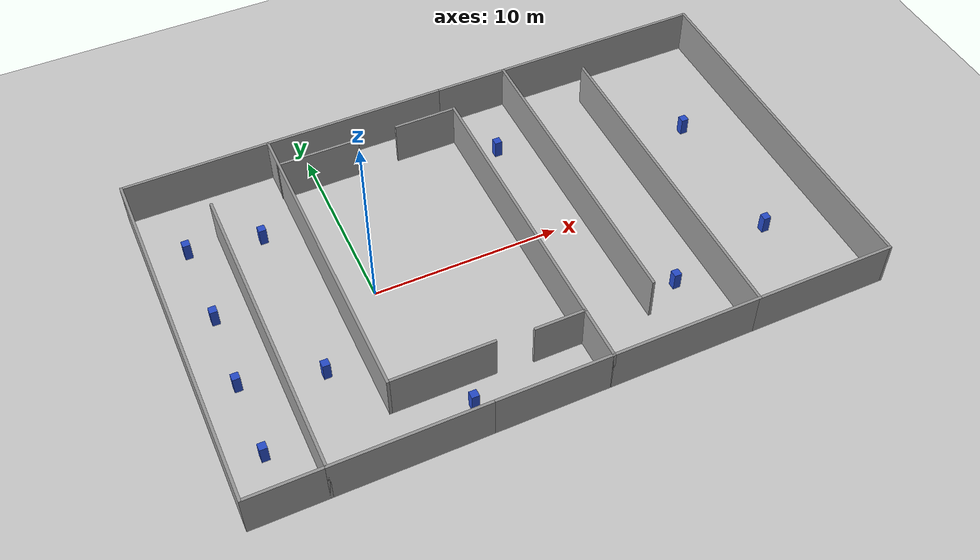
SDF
<?xml version="1.0" ?>
<sdf version="1.6">
  <world name="Local_0904_world">
    <!-- 태양광 조명 -->
    <include>
      <uri>model://sun</uri>
    </include>

    <!-- 바닥 (Ground Plane) -->
    <include>
      <uri>model://ground_plane</uri>
    </include>

    <!-- Local_0904 맵 모델 (벽체) -->
    <include>
      <uri>model://Local_0904</uri>
      <pose>0 0 0 0 0 0</pose>
    </include>

    <!-- [1] 정적 장애물 11개 (Static Obstacles - 월드 기본 포함)             -->
    <!-- static_obs_1 -->
    <include>
      <name>static_obs_1</name>
      <uri>model://static_box_obstacle</uri>
      <pose>-8.0 -6.75 0.01 0 0 0.0</pose>
    </include>
    <!-- static_obs_2 -->
    <include>
      <name>static_obs_2</name>
      <uri>model://static_box_obstacle</uri>
      <pose>-7.95 -2.6 0.01 0 0 0.0</pose>
    </include>
    <!-- static_obs_3 -->
    <include>
      <name>static_obs_3</name>
      <uri>model://static_box_obstacle</uri>
      <pose>-7.75 1.65 0.01 0 0 0.0</pose>
    </include>
    <!-- static_obs_4 -->
    <include>
      <name>static_obs_4</name>
      <uri>model://static_box_obstacle</uri>
      <pose>-7.75 6.35 0.01 0 0 0.0</pose>
    </include>
    <!-- static_obs_5 -->
    <include>
      <name>static_obs_5</name>
      <uri>model://static_box_obstacle</uri>
      <pose>-3.95 5.7 0.01 0 0 0.0</pose>
    </include>
    <!-- static_obs_6 -->
    <include>
      <name>static_obs_6</name>
      <uri>model://static_box_obstacle</uri>
      <pose>-3.9 -3.65 0.01 0 0 0.0</pose>
    </include>
    <!-- static_obs_7 -->
    <include>
      <name>static_obs_7</name>
      <uri>model://static_box_obstacle</uri>
      <pose>1.7 -8.2 0.01 0 0 0.0</pose>
    </include>
    <!-- static_obs_8 -->
    <include>
      <name>static_obs_8</name>
      <uri>model://static_box_obstacle</uri>
      <pose>9.7 6.4 0.01 0 0 0.0</pose>
    </include>
    <!-- static_obs_9 -->
    <include>
      <name>static_obs_9</name>
      <uri>model://static_box_obstacle</uri>
      <pose>13.8 -5.85 0.01 0 0 0.0</pose>
    </include>
    <!-- static_obs_10 -->
    <include>
      <name>static_obs_10</name>
      <uri>model://static_box_obstacle</uri>
      <pose>19.8 3.65 0.01 0 0 0.0</pose>
    </include>
    <!-- static_obs_11 -->
    <include>
      <name>static_obs_11</name>
      <uri>model://static_box_obstacle</uri>
      <pose>19.9 -4.5 0.01 0 0 0.0</pose>
    </include>

    <!-- 물리 엔진 설정 (ODE 최적화) -->
    <physics type="ode">
      <real_time_update_rate>1000.0</real_time_update_rate>
      <max_step_size>0.001</max_step_size>
      <real_time_factor>1.0</real_time_factor>
      <ode>
        <solver>
          <type>quick</type>
          <iters>150</iters>
          <precon_iters>0</precon_iters>
          <sor>1.4</sor>
          <use_dynamic_moi_rescaling>1</use_dynamic_moi_rescaling>
        </solver>
        <constraints>
          <cfm>0.00001</cfm>
          <erp>0.2</erp>
          <contact_max_correcting_vel>2000.0</contact_max_correcting_vel>
          <contact_surface_layer>0.01</contact_surface_layer>
        </constraints>
      </ode>
    </physics>

    <!-- GUI 초기 카메라 조감도 시점 (가로 34m x 세로 20m 전체 조감) -->
    <gui fullscreen="0">
      <camera name="overview_camera">
        <pose>6.5 -0.5 42.0 0.0 1.5707 1.5707</pose>
        <view_controller>orbit</view_controller>
      </camera>
    </gui>
  </world>
</sdf>

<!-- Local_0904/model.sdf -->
<sdf version="1.7">
  <model name="Local_0904">
    <pose>0 0 0 0 0 0</pose>
    <link name="Wall_10">
      <collision name="Wall_10_Collision">
        <geometry>
          <box>
            <size>4 0.15 2.5</size>
          </box>
        </geometry>
        <pose>0 0 1.25 0 -0 0</pose>
      </collision>
      <visual name="Wall_10_Visual">
        <pose>0 0 1.25 0 -0 0</pose>
        <geometry>
          <box>
            <size>4 0.15 2.5</size>
          </box>
        </geometry>
        <material>
          <script>
            <uri>file://media/materials/scripts/gazebo.material</uri>
            <name>Gazebo/Grey</name>
          </script>
          <ambient>1 1 1 1</ambient>
        </material>
        <meta>
          <layer>0</layer>
        </meta>
      </visual>
      <pose>-7.8885 -9.8834 0.0000 0.0000 -0.0000 0.0000</pose>
    </link>
    <link name="Wall_12">
      <collision name="Wall_12_Collision">
        <geometry>
          <box>
            <size>17 0.15 2.5</size>
          </box>
        </geometry>
        <pose>0 0 1.25 0 -0 0</pose>
      </collision>
      <visual name="Wall_12_Visual">
        <pose>0 0 1.25 0 -0 0</pose>
        <geometry>
          <box>
            <size>17 0.15 2.5</size>
          </box>
        </geometry>
        <material>
          <script>
            <uri>file://media/materials/scripts/gazebo.material</uri>
            <name>Gazebo/Grey</name>
          </script>
          <ambient>1 1 1 1</ambient>
        </material>
        <meta>
          <layer>0</layer>
        </meta>
      </visual>
      <pose>-5.9635 -1.4584 0.0000 0.0000 -0.0000 1.5708</pose>
    </link>
    <link name="Wall_14">
      <collision name="Wall_14_Collision">
        <geometry>
          <box>
            <size>8 0.15 2.5</size>
          </box>
        </geometry>
        <pose>0 0 1.25 0 -0 0</pose>
      </collision>
      <visual name="Wall_14_Visual">
        <pose>0 0 1.25 0 -0 0</pose>
        <geometry>
          <box>
            <size>8 0.15 2.5</size>
          </box>
        </geometry>
        <material>
          <script>
            <uri>file://media/materials/scripts/gazebo.material</uri>
            <name>Gazebo/Grey</name>
          </script>
          <ambient>1 1 1 1</ambient>
        </material>
        <meta>
          <layer>0</layer>
        </meta>
      </visual>
      <pose>-5.8885 9.9666 0.0000 0.0000 -0.0000 0.0000</pose>
    </link>
    <link name="Wall_16">
      <collision name="Wall_16_Collision">
        <geometry>
          <box>
            <size>17 0.15 2.5</size>
          </box>
        </geometry>
        <pose>0 0 1.25 0 -0 0</pose>
      </collision>
      <visual name="Wall_16_Visual">
        <pose>0 0 1.25 0 -0 0</pose>
        <geometry>
          <box>
            <size>17 0.15 2.5</size>
          </box>
        </geometry>
        <material>
          <script>
            <uri>file://media/materials/scripts/gazebo.material</uri>
            <name>Gazebo/Grey</name>
          </script>
          <ambient>1 1 1 1</ambient>
        </material>
        <meta>
          <layer>0</layer>
        </meta>
      </visual>
      <pose>-1.9635 1.5416 0.0000 0.0000 -0.0000 -1.5708</pose>
    </link>
    <link name="Wall_18">
      <collision name="Wall_18_Collision">
        <geometry>
          <box>
            <size>8 0.15 2.5</size>
          </box>
        </geometry>
        <pose>0 0 1.25 0 -0 0</pose>
      </collision>
      <visual name="Wall_18_Visual">
        <pose>0 0 1.25 0 -0 0</pose>
        <geometry>
          <box>
            <size>8 0.15 2.5</size>
          </box>
        </geometry>
        <material>
          <script>
            <uri>file://media/materials/scripts/gazebo.material</uri>
            <name>Gazebo/Grey</name>
          </script>
          <ambient>1 1 1 1</ambient>
        </material>
        <meta>
          <layer>0</layer>
        </meta>
      </visual>
      <pose>-2.0385 -9.8834 0.0000 0.0000 -0.0000 0.0000</pose>
    </link>
    <link name="Wall_20">
      <collision name="Wall_20_Collision">
        <geometry>
          <box>
            <size>10 0.15 2.5</size>
          </box>
        </geometry>
        <pose>0 0 1.25 0 -0 0</pose>
      </collision>
      <visual name="Wall_20_Visual">
        <pose>0 0 1.25 0 -0 0</pose>
        <geometry>
          <box>
            <size>10 0.15 2.5</size>
          </box>
        </geometry>
        <material>
          <script>
            <uri>file://media/materials/scripts/gazebo.material</uri>
            <name>Gazebo/Grey</name>
          </script>
          <ambient>1 1 1 1</ambient>
        </material>
        <meta>
          <layer>0</layer>
        </meta>
      </visual>
      <pose>2.9615 9.9666 0.0000 0.0000 -0.0000 0.0000</pose>
    </link>
    <link name="Wall_22">
      <collision name="Wall_22_Collision">
        <geometry>
          <box>
            <size>4.5 0.15 2.5</size>
          </box>
        </geometry>
        <pose>0 0 1.25 0 -0 0</pose>
      </collision>
      <visual name="Wall_22_Visual">
        <pose>0 0 1.25 0 -0 0</pose>
        <geometry>
          <box>
            <size>4.5 0.15 2.5</size>
          </box>
        </geometry>
        <material>
          <script>
            <uri>file://media/materials/scripts/gazebo.material</uri>
            <name>Gazebo/Grey</name>
          </script>
          <ambient>1 1 1 1</ambient>
        </material>
        <meta>
          <layer>0</layer>
        </meta>
      </visual>
      <pose>0.1788 8.2240 0.0000 0.0000 -0.0000 0.0000</pose>
    </link>
    <link name="Wall_25">
      <collision name="Wall_25_Collision">
        <geometry>
          <box>
            <size>6.25 0.15 2.5</size>
          </box>
        </geometry>
        <pose>0 0 1.25 0 -0 0</pose>
      </collision>
      <visual name="Wall_25_Visual">
        <pose>0 0 1.25 0 -0 0</pose>
        <geometry>
          <box>
            <size>6.25 0.15 2.5</size>
          </box>
        </geometry>
        <material>
          <script>
            <uri>file://media/materials/scripts/gazebo.material</uri>
            <name>Gazebo/Grey</name>
          </script>
          <ambient>1 1 1 1</ambient>
        </material>
        <meta>
          <layer>0</layer>
        </meta>
      </visual>
      <pose>4.9365 -9.8834 0.0000 0.0000 -0.0000 0.0000</pose>
    </link>
    <link name="Wall_26">
      <collision name="Wall_26_Collision">
        <geometry>
          <box>
            <size>3 0.15 2.5</size>
          </box>
        </geometry>
        <pose>0 0 1.25 0 -0 0</pose>
      </collision>
      <visual name="Wall_26_Visual">
        <pose>0 0 1.25 0 -0 0</pose>
        <geometry>
          <box>
            <size>3 0.15 2.5</size>
          </box>
        </geometry>
        <material>
          <script>
            <uri>file://media/materials/scripts/gazebo.material</uri>
            <name>Gazebo/Grey</name>
          </script>
          <ambient>1 1 1 1</ambient>
        </material>
        <meta>
          <layer>0</layer>
        </meta>
      </visual>
      <pose>7.9865 -8.4584 0.0000 0.0000 -0.0000 1.5708</pose>
    </link>
    <link name="Wall_27">
      <collision name="Wall_27_Collision">
        <geometry>
          <box>
            <size>2.75 0.15 2.5</size>
          </box>
        </geometry>
        <pose>0 0 1.25 0 -0 0</pose>
      </collision>
      <visual name="Wall_27_Visual">
        <pose>0 0 1.25 0 -0 0</pose>
        <geometry>
          <box>
            <size>2.75 0.15 2.5</size>
          </box>
        </geometry>
        <material>
          <script>
            <uri>file://media/materials/scripts/gazebo.material</uri>
            <name>Gazebo/Grey</name>
          </script>
          <ambient>1 1 1 1</ambient>
        </material>
        <meta>
          <layer>0</layer>
        </meta>
      </visual>
      <pose>6.6865 -7.0334 0.0000 0.0000 -0.0000 3.1416</pose>
    </link>
    <link name="Wall_29">
      <collision name="Wall_29_Collision">
        <geometry>
          <box>
            <size>5.5 0.15 2.5</size>
          </box>
        </geometry>
        <pose>0 0 1.25 0 -0 0</pose>
      </collision>
      <visual name="Wall_29_Visual">
        <pose>0 0 1.25 0 -0 0</pose>
        <geometry>
          <box>
            <size>5.5 0.15 2.5</size>
          </box>
        </geometry>
        <material>
          <script>
            <uri>file://media/materials/scripts/gazebo.material</uri>
            <name>Gazebo/Grey</name>
          </script>
          <ambient>1 1 1 1</ambient>
        </material>
        <meta>
          <layer>0</layer>
        </meta>
      </visual>
      <pose>0.7115 -6.8834 0.0000 0.0000 -0.0000 0.0000</pose>
    </link>
    <link name="Wall_32">
      <collision name="Wall_32_Collision">
        <geometry>
          <box>
            <size>3.5 0.15 2.5</size>
          </box>
        </geometry>
        <pose>0 0 1.25 0 -0 0</pose>
      </collision>
      <visual name="Wall_32_Visual">
        <pose>0 0 1.25 0 -0 0</pose>
        <geometry>
          <box>
            <size>3.5 0.15 2.5</size>
          </box>
        </geometry>
        <material>
          <script>
            <uri>file://media/materials/scripts/gazebo.material</uri>
            <name>Gazebo/Grey</name>
          </script>
          <ambient>1 1 1 1</ambient>
        </material>
        <meta>
          <layer>0</layer>
        </meta>
      </visual>
      <pose>6.3131 8.2775 0.0000 0.0000 -0.0000 0.0000</pose>
    </link>
    <link name="Wall_33">
      <collision name="Wall_33_Collision">
        <geometry>
          <box>
            <size>15.4609 0.15 2.5</size>
          </box>
        </geometry>
        <pose>0 0 1.25 0 -0 0</pose>
      </collision>
      <visual name="Wall_33_Visual">
        <pose>0 0 1.25 0 -0 0</pose>
        <geometry>
          <box>
            <size>15.4609 0.15 2.5</size>
          </box>
        </geometry>
        <material>
          <script>
            <uri>file://media/materials/scripts/gazebo.material</uri>
            <name>Gazebo/Grey</name>
          </script>
          <ambient>1 1 1 1</ambient>
        </material>
        <meta>
          <layer>0</layer>
        </meta>
      </visual>
      <pose>7.9873 0.6221 0.0000 0.0000 -0.0000 -1.5709</pose>
    </link>
    <link name="Wall_35">
      <collision name="Wall_35_Collision">
        <geometry>
          <box>
            <size>4 0.15 2.5</size>
          </box>
        </geometry>
        <pose>0 0 1.25 0 -0 0</pose>
      </collision>
      <visual name="Wall_35_Visual">
        <pose>0 0 1.25 0 -0 0</pose>
        <geometry>
          <box>
            <size>4 0.15 2.5</size>
          </box>
        </geometry>
        <material>
          <script>
            <uri>file://media/materials/scripts/gazebo.material</uri>
            <name>Gazebo/Grey</name>
          </script>
          <ambient>1 1 1 1</ambient>
        </material>
        <meta>
          <layer>0</layer>
        </meta>
      </visual>
      <pose>9.8115 9.9666 0.0000 0.0000 -0.0000 0.0000</pose>
    </link>
    <link name="Wall_37">
      <collision name="Wall_37_Collision">
        <geometry>
          <box>
            <size>17 0.15 2.5</size>
          </box>
        </geometry>
        <pose>0 0 1.25 0 -0 0</pose>
      </collision>
      <visual name="Wall_37_Visual">
        <pose>0 0 1.25 0 -0 0</pose>
        <geometry>
          <box>
            <size>17 0.15 2.5</size>
          </box>
        </geometry>
        <material>
          <script>
            <uri>file://media/materials/scripts/gazebo.material</uri>
            <name>Gazebo/Grey</name>
          </script>
          <ambient>1 1 1 1</ambient>
        </material>
        <meta>
          <layer>0</layer>
        </meta>
      </visual>
      <pose>11.7365 1.5416 0.0000 0.0000 -0.0000 -1.5708</pose>
    </link>
    <link name="Wall_39">
      <collision name="Wall_39_Collision">
        <geometry>
          <box>
            <size>8 0.15 2.5</size>
          </box>
        </geometry>
        <pose>0 0 1.25 0 -0 0</pose>
      </collision>
      <visual name="Wall_39_Visual">
        <pose>0 0 1.25 0 -0 0</pose>
        <geometry>
          <box>
            <size>8 0.15 2.5</size>
          </box>
        </geometry>
        <material>
          <script>
            <uri>file://media/materials/scripts/gazebo.material</uri>
            <name>Gazebo/Grey</name>
          </script>
          <ambient>1 1 1 1</ambient>
        </material>
        <meta>
          <layer>0</layer>
        </meta>
      </visual>
      <pose>11.9115 -9.8834 0.0000 0.0000 -0.0000 0.0000</pose>
    </link>
    <link name="Wall_41">
      <collision name="Wall_41_Collision">
        <geometry>
          <box>
            <size>18.25 0.15 2.5</size>
          </box>
        </geometry>
        <pose>0 0 1.25 0 -0 0</pose>
      </collision>
      <visual name="Wall_41_Visual">
        <pose>0 0 1.25 0 -0 0</pose>
        <geometry>
          <box>
            <size>18.25 0.15 2.5</size>
          </box>
        </geometry>
        <material>
          <script>
            <uri>file://media/materials/scripts/gazebo.material</uri>
            <name>Gazebo/Grey</name>
          </script>
          <ambient>1 1 1 1</ambient>
        </material>
        <meta>
          <layer>0</layer>
        </meta>
      </visual>
      <pose>15.8365 -0.8334 0.0000 0.0000 -0.0000 1.5708</pose>
    </link>
    <link name="Wall_43">
      <collision name="Wall_43_Collision">
        <geometry>
          <box>
            <size>11.75 0.15 2.5</size>
          </box>
        </geometry>
        <pose>0 0 1.25 0 -0 0</pose>
      </collision>
      <visual name="Wall_43_Visual">
        <pose>0 0 1.25 0 -0 0</pose>
        <geometry>
          <box>
            <size>11.75 0.15 2.5</size>
          </box>
        </geometry>
        <material>
          <script>
            <uri>file://media/materials/scripts/gazebo.material</uri>
            <name>Gazebo/Grey</name>
          </script>
          <ambient>1 1 1 1</ambient>
        </material>
        <meta>
          <layer>0</layer>
        </meta>
      </visual>
      <pose>17.5365 9.9666 0.0000 0.0000 -0.0000 0.0000</pose>
    </link>
    <link name="Wall_44">
      <collision name="Wall_44_Collision">
        <geometry>
          <box>
            <size>20 0.15 2.5</size>
          </box>
        </geometry>
        <pose>0 0 1.25 0 -0 0</pose>
      </collision>
      <visual name="Wall_44_Visual">
        <pose>0 0 1.25 0 -0 0</pose>
        <geometry>
          <box>
            <size>20 0.15 2.5</size>
          </box>
        </geometry>
        <material>
          <script>
            <uri>file://media/materials/scripts/gazebo.material</uri>
            <name>Gazebo/Grey</name>
          </script>
          <ambient>1 1 1 1</ambient>
        </material>
        <meta>
          <layer>0</layer>
        </meta>
      </visual>
      <pose>23.3365 0.0416 0.0000 0.0000 -0.0000 -1.5708</pose>
    </link>
    <link name="Wall_45">
      <collision name="Wall_45_Collision">
        <geometry>
          <box>
            <size>7.65 0.15 2.5</size>
          </box>
        </geometry>
        <pose>0 0 1.25 0 -0 0</pose>
      </collision>
      <visual name="Wall_45_Visual">
        <pose>0 0 1.25 0 -0 0</pose>
        <geometry>
          <box>
            <size>7.65 0.15 2.5</size>
          </box>
        </geometry>
        <material>
          <script>
            <uri>file://media/materials/scripts/gazebo.material</uri>
            <name>Gazebo/Grey</name>
          </script>
          <ambient>1 1 1 1</ambient>
        </material>
        <meta>
          <layer>0</layer>
        </meta>
      </visual>
      <pose>19.5865 -9.8834 0.0000 0.0000 -0.0000 3.1416</pose>
    </link>
    <link name="Wall_8">
      <collision name="Wall_8_Collision">
        <geometry>
          <box>
            <size>20 0.15 2.5</size>
          </box>
        </geometry>
        <pose>0 0 1.25 0 -0 0</pose>
      </collision>
      <visual name="Wall_8_Visual">
        <pose>0 0 1.25 0 -0 0</pose>
        <geometry>
          <box>
            <size>20 0.15 2.5</size>
          </box>
        </geometry>
        <material>
          <script>
            <uri>file://media/materials/scripts/gazebo.material</uri>
            <name>Gazebo/Grey</name>
          </script>
          <ambient>1 1 1 1</ambient>
        </material>
        <meta>
          <layer>0</layer>
        </meta>
      </visual>
      <pose>-9.8135 0.0416 0.0000 0.0000 -0.0000 -1.5708</pose>
    </link>
    <static>1</static>
  <static>1</static></model>
</sdf>

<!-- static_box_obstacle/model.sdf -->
<sdf version="1.6">
  <model name="static_box_obstacle">
    <static>true</static>
    <link name="link">
      <pose>0 0 0.5 0 0 0</pose>
      <collision name="collision">
        <geometry>
          <box>
            <size>0.4 0.4 1.0</size>
          </box>
        </geometry>
        <surface>
          <contact>
            <collide_without_contact>true</collide_without_contact>
          </contact>
        </surface>
      </collision>
      <visual name="visual">
        <geometry>
          <box>
            <size>0.4 0.4 1.0</size>
          </box>
        </geometry>
        <material>
          <ambient>0.1 0.3 0.8 1.0</ambient>
          <diffuse>0.2 0.4 0.9 1.0</diffuse>
          <script>
            <uri>file://media/materials/scripts/gazebo.material</uri>
            <name>Gazebo/Blue</name>
          </script>
        </material>
      </visual>
    </link>
  </model>
</sdf>
